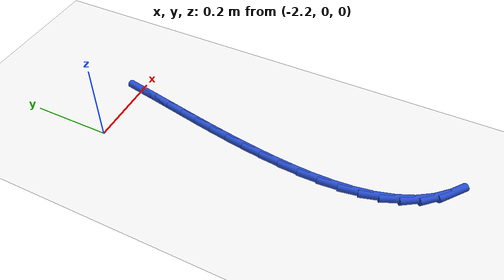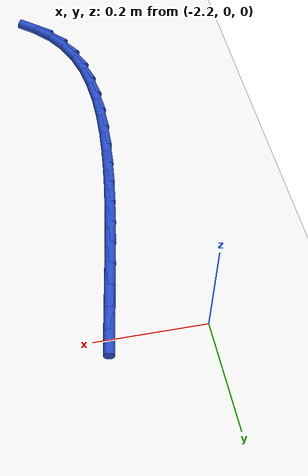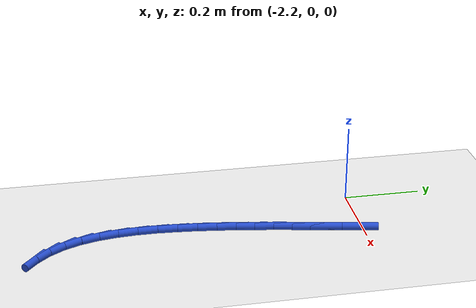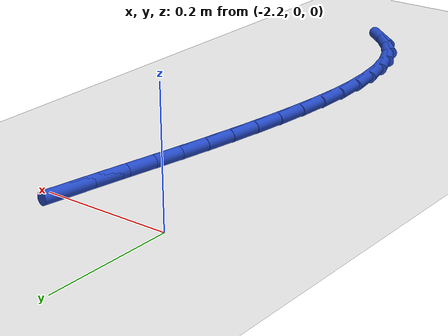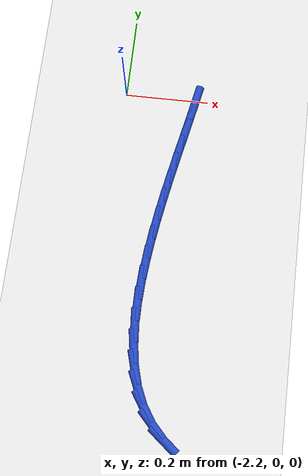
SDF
<sdf version="1.6">
 <world name="default">
  <model name="ground_plane">
   <static>1</static>
   <link name="link">
    <collision name="collision">
     <geometry><plane><normal>0 0 1</normal><size>100 100</size></plane></geometry>
     <surface><friction><ode><mu>100</mu><mu2>50</mu2></ode></friction></surface>
    </collision>
    <visual name="visual">
     <cast_shadows>0</cast_shadows>
     <geometry><plane><normal>0 0 1</normal><size>100 100</size></plane></geometry>
     <material>
      <script><uri>file://media/materials/scripts/gazebo.material</uri><name>Gazebo/WhiteGlow</name></script>
     </material>
    </visual>
   </link>
  </model>
  <model name="line">
   <link name="link_75">
    <pose>-2.028882129918492 -0.003784921469206167 0.01 0 1.57 1.379973784292877</pose>
    <collision name="collision">
     <geometry><cylinder><radius>0.01</radius><length>0.08</length></cylinder></geometry>
    </collision>
    <visual name="visual">
     <material>
      <script><name>Gazebo/Blue</name><uri>file://media/materials/scripts/gazebo.material</uri></script>
     </material>
     <geometry><cylinder><radius>0.01</radius><length>0.08</length></cylinder></geometry>
    </visual>
   </link>
   <link name="link_76">
    <pose>-2.0374753621333186 -0.04826958003895916 0.01 0 1.57 1.374037578399826</pose>
    <collision name="collision">
     <geometry><cylinder><radius>0.01</radius><length>0.08</length></cylinder></geometry>
    </collision>
    <visual name="visual">
     <material>
      <script><name>Gazebo/Blue</name><uri>file://media/materials/scripts/gazebo.material</uri></script>
     </material>
     <geometry><cylinder><radius>0.01</radius><length>0.08</length></cylinder></geometry>
    </visual>
   </link>
   <link name="link_77">
    <pose>-2.046388437306059 -0.09298300196737896 0.01 0 1.57 1.3726586635768854</pose>
    <collision name="collision">
     <geometry><cylinder><radius>0.01</radius><length>0.08</length></cylinder></geometry>
    </collision>
    <visual name="visual">
     <material>
      <script><name>Gazebo/Blue</name><uri>file://media/materials/scripts/gazebo.material</uri></script>
     </material>
     <geometry><cylinder><radius>0.01</radius><length>0.08</length></cylinder></geometry>
    </visual>
   </link>
   <link name="link_78">
    <pose>-2.0554321286254273 -0.13802760840774167 0.01 0 1.57 1.3757394455502725</pose>
    <collision name="collision">
     <geometry><cylinder><radius>0.01</radius><length>0.08</length></cylinder></geometry>
    </collision>
    <visual name="visual">
     <material>
      <script><name>Gazebo/Blue</name><uri>file://media/materials/scripts/gazebo.material</uri></script>
     </material>
     <geometry><cylinder><radius>0.01</radius><length>0.08</length></cylinder></geometry>
    </visual>
   </link>
   <link name="link_79">
    <pose>-2.064417209280139 -0.18350582051332553 0.01 0 1.57 1.3831489538576112</pose>
    <collision name="collision">
     <geometry><cylinder><radius>0.01</radius><length>0.08</length></cylinder></geometry>
    </collision>
    <visual name="visual">
     <material>
      <script><name>Gazebo/Blue</name><uri>file://media/materials/scripts/gazebo.material</uri></script>
     </material>
     <geometry><cylinder><radius>0.01</radius><length>0.08</length></cylinder></geometry>
    </visual>
   </link>
   <link name="link_80">
    <pose>-2.0731544524589083 -0.2295200594374059 0.01 0 1.57 1.3947243905979094</pose>
    <collision name="collision">
     <geometry><cylinder><radius>0.01</radius><length>0.08</length></cylinder></geometry>
    </collision>
    <visual name="visual">
     <material>
      <script><name>Gazebo/Blue</name><uri>file://media/materials/scripts/gazebo.material</uri></script>
     </material>
     <geometry><cylinder><radius>0.01</radius><length>0.08</length></cylinder></geometry>
    </visual>
   </link>
   <link name="link_81">
    <pose>-2.081454631350449 -0.2761727463332611 0.01 0 1.57 1.4102711315188607</pose>
    <collision name="collision">
     <geometry><cylinder><radius>0.01</radius><length>0.08</length></cylinder></geometry>
    </collision>
    <visual name="visual">
     <material>
      <script><name>Gazebo/Blue</name><uri>file://media/materials/scripts/gazebo.material</uri></script>
     </material>
     <geometry><cylinder><radius>0.01</radius><length>0.08</length></cylinder></geometry>
    </visual>
   </link>
   <link name="link_82">
    <pose>-2.089128519143477 -0.32356630235416717 0.01 0 1.57 1.4295618158417176</pose>
    <collision name="collision">
     <geometry><cylinder><radius>0.01</radius><length>0.08</length></cylinder></geometry>
    </collision>
    <visual name="visual">
     <material>
      <script><name>Gazebo/Blue</name><uri>file://media/materials/scripts/gazebo.material</uri></script>
     </material>
     <geometry><cylinder><radius>0.01</radius><length>0.08</length></cylinder></geometry>
    </visual>
   </link>
   <link name="link_83">
    <pose>-2.0959868890267055 -0.37180314865340003 0.01 0 1.57 1.4524372828955616</pose>
    <collision name="collision">
     <geometry><cylinder><radius>0.01</radius><length>0.08</length></cylinder></geometry>
    </collision>
    <visual name="visual">
     <material>
      <script><name>Gazebo/Blue</name><uri>file://media/materials/scripts/gazebo.material</uri></script>
     </material>
     <geometry><cylinder><radius>0.01</radius><length>0.08</length></cylinder></geometry>
    </visual>
   </link>
   <link name="link_84">
    <pose>-2.1018341569673336 -0.42097503859744667 0.01 0 1.57 1.4819904620774775</pose>
    <collision name="collision">
     <geometry><cylinder><radius>0.01</radius><length>0.08</length></cylinder></geometry>
    </collision>
    <visual name="visual">
     <material>
      <script><name>Gazebo/Blue</name><uri>file://media/materials/scripts/gazebo.material</uri></script>
     </material>
     <geometry><cylinder><radius>0.01</radius><length>0.08</length></cylinder></geometry>
    </visual>
   </link>
   <link name="link_85">
    <pose>-2.1062738327281667 -0.47083659327761146 0.01 0 1.57 1.5227731970459915</pose>
    <collision name="collision">
     <geometry><cylinder><radius>0.01</radius><length>0.08</length></cylinder></geometry>
    </collision>
    <visual name="visual">
     <material>
      <script><name>Gazebo/Blue</name><uri>file://media/materials/scripts/gazebo.material</uri></script>
     </material>
     <geometry><cylinder><radius>0.01</radius><length>0.08</length></cylinder></geometry>
    </visual>
   </link>
   <link name="link_86">
    <pose>-2.1086724216674977 -0.520744726634435 0.01 0 1.57 -1.564920179285367</pose>
    <collision name="collision">
     <geometry><cylinder><radius>0.01</radius><length>0.08</length></cylinder></geometry>
    </collision>
    <visual name="visual">
     <material>
      <script><name>Gazebo/Blue</name><uri>file://media/materials/scripts/gazebo.material</uri></script>
     </material>
     <geometry><cylinder><radius>0.01</radius><length>0.08</length></cylinder></geometry>
    </visual>
   </link>
   <link name="link_87">
    <pose>-2.1083827904305203 -0.5700334660560372 0.01 0 1.57 -1.495424170975632</pose>
    <collision name="collision">
     <geometry><cylinder><radius>0.01</radius><length>0.08</length></cylinder></geometry>
    </collision>
    <visual name="visual">
     <material>
      <script><name>Gazebo/Blue</name><uri>file://media/materials/scripts/gazebo.material</uri></script>
     </material>
     <geometry><cylinder><radius>0.01</radius><length>0.08</length></cylinder></geometry>
    </visual>
   </link>
   <link name="link_88">
    <pose>-2.1047578056624285 -0.6180368389305375 0.01 0 1.57 -1.407081870216652</pose>
    <collision name="collision">
     <geometry><cylinder><radius>0.01</radius><length>0.08</length></cylinder></geometry>
    </collision>
    <visual name="visual">
     <material>
      <script><name>Gazebo/Blue</name><uri>file://media/materials/scripts/gazebo.material</uri></script>
     </material>
     <geometry><cylinder><radius>0.01</radius><length>0.08</length></cylinder></geometry>
    </visual>
   </link>
   <link name="link_89">
    <pose>-2.0971503340084148 -0.6640888726460586 0.01 0 1.57 -1.2961792604196254</pose>
    <collision name="collision">
     <geometry><cylinder><radius>0.01</radius><length>0.08</length></cylinder></geometry>
    </collision>
    <visual name="visual">
     <material>
      <script><name>Gazebo/Blue</name><uri>file://media/materials/scripts/gazebo.material</uri></script>
     </material>
     <geometry><cylinder><radius>0.01</radius><length>0.08</length></cylinder></geometry>
    </visual>
   </link>
   <link name="link_90">
    <pose>-2.084913242113674 -0.7075235945907203 0.01 0 1.57 -1.1594819805172856</pose>
    <collision name="collision">
     <geometry><cylinder><radius>0.01</radius><length>0.08</length></cylinder></geometry>
    </collision>
    <visual name="visual">
     <material>
      <script><name>Gazebo/Blue</name><uri>file://media/materials/scripts/gazebo.material</uri></script>
     </material>
     <geometry><cylinder><radius>0.01</radius><length>0.08</length></cylinder></geometry>
    </visual>
   </link>
   <link name="link_91">
    <pose>-2.0673993966233972 -0.7476750321526421 0.01 0 1.57 -0.9962473769882602</pose>
    <collision name="collision">
     <geometry><cylinder><radius>0.01</radius><length>0.08</length></cylinder></geometry>
    </collision>
    <visual name="visual">
     <material>
      <script><name>Gazebo/Blue</name><uri>file://media/materials/scripts/gazebo.material</uri></script>
     </material>
     <geometry><cylinder><radius>0.01</radius><length>0.08</length></cylinder></geometry>
    </visual>
   </link>
   <link name="link_92">
    <pose>-2.043961829288558 -0.78387734729675 0.01 0 1.57 -0.8225497552959556</pose>
    <collision name="collision">
     <geometry><cylinder><radius>0.01</radius><length>0.08</length></cylinder></geometry>
    </collision>
    <visual name="visual">
     <material>
      <script><name>Gazebo/Blue</name><uri>file://media/materials/scripts/gazebo.material</uri></script>
     </material>
     <geometry><cylinder><radius>0.01</radius><length>0.08</length></cylinder></geometry>
    </visual>
   </link>
   <link name="link_93">
    <pose>-2.0143434423365263 -0.8157824832487682 0.01 0 1.57 -0.6815727432666651</pose>
    <collision name="collision">
     <geometry><cylinder><radius>0.01</radius><length>0.08</length></cylinder></geometry>
    </collision>
    <visual name="visual">
     <material>
      <script><name>Gazebo/Blue</name><uri>file://media/materials/scripts/gazebo.material</uri></script>
     </material>
     <geometry><cylinder><radius>0.01</radius><length>0.08</length></cylinder></geometry>
    </visual>
   </link>
  </model>
 </world>
</sdf>
